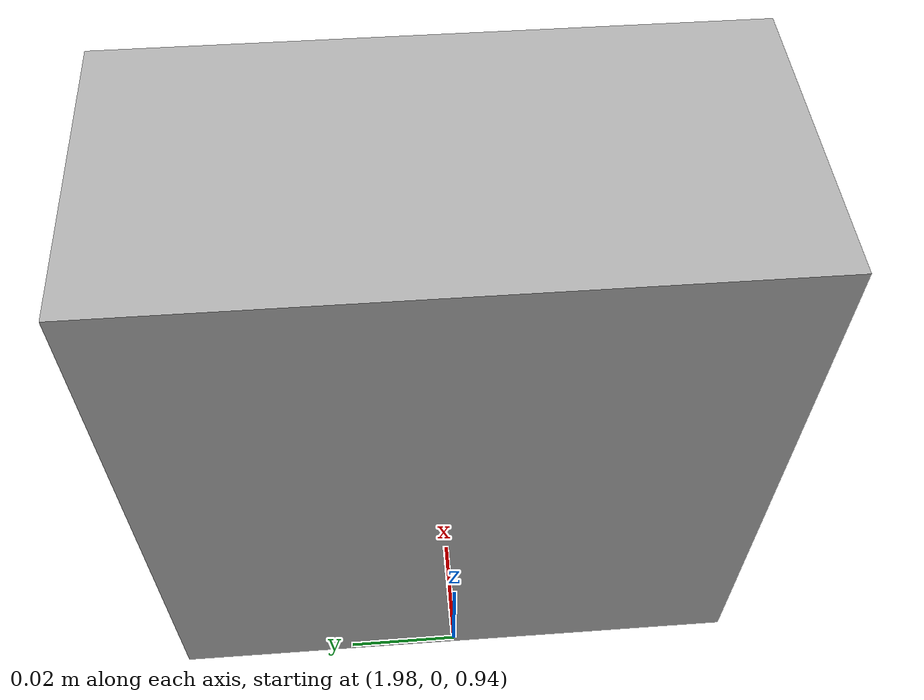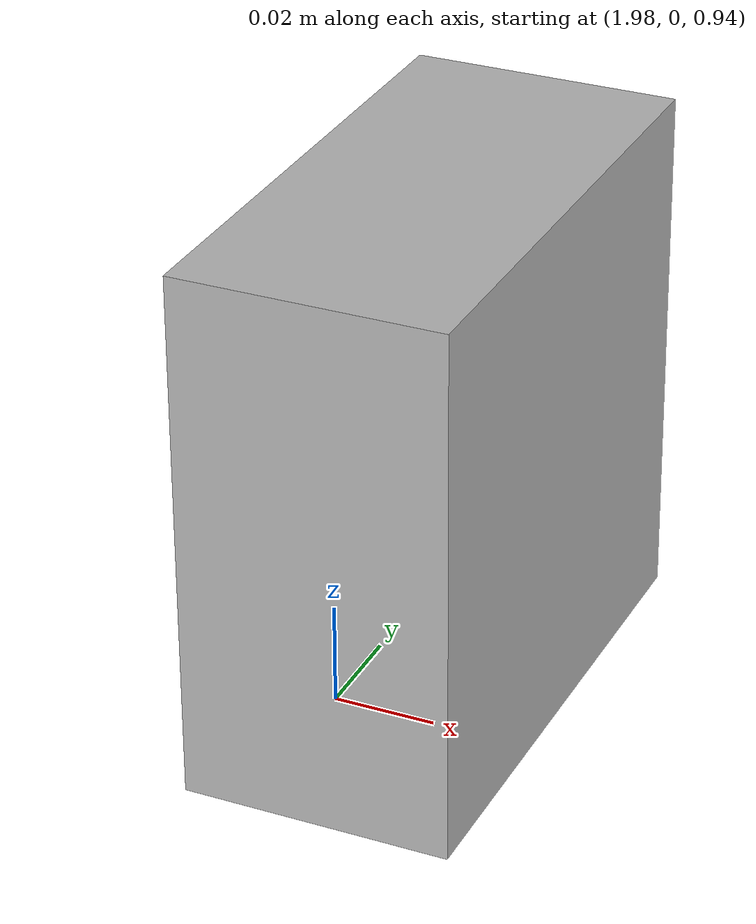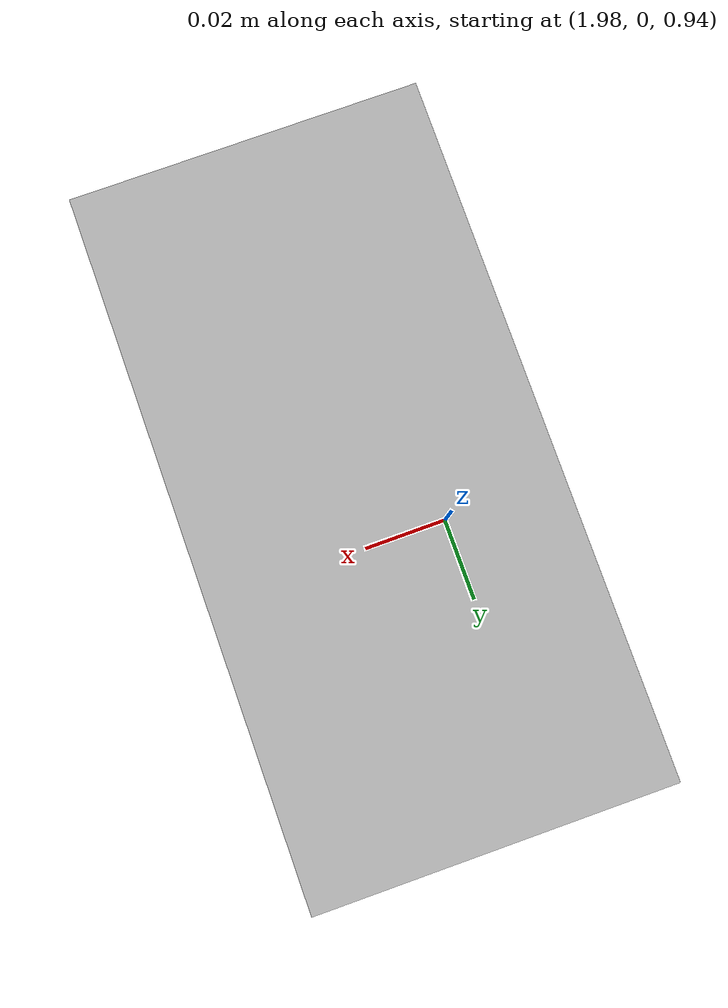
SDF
<?xml version="1.0" ?>
<sdf version="1.6">
  <world name="scene_base">
    <plugin
      filename="ignition-gazebo-physics-system"
      name="ignition::gazebo::systems::Physics">
    </plugin>
    <plugin
      filename="ignition-gazebo-user-commands-system"
      name="ignition::gazebo::systems::UserCommands">
    </plugin>
    <plugin
      filename="ignition-gazebo-scene-broadcaster-system"
      name="ignition::gazebo::systems::SceneBroadcaster">
    </plugin>
    <plugin
      filename="ignition-gazebo-sensors-system"
      name="ignition::gazebo::systems::Sensors">
      <render_engine>ogre2</render_engine>
    </plugin>

    <physics type='ode'>
      <max_step_size>0.001</max_step_size>
      <real_time_factor>1</real_time_factor>
      <real_time_update_rate>0</real_time_update_rate>
      <ode>
        <solver>
            <type>quick</type>
            <iters>50</iters>
        </solver>
        <constraints>
          <contact_max_correcting_vel>1</contact_max_correcting_vel>
        </constraints>
      </ode>
    </physics>

    <scene>
      <ambient>0.4 0.4 0.4 1</ambient>
      <background>0.9 0.9 0.9 1</background>
      <shadows>false</shadows>
    </scene>
    <gui fullscreen="0">

      <!-- 3D scene -->
      <plugin filename="MinimalScene" name="3D View">
        <ignition-gui>
          <title>3D View</title>
          <property type="bool" key="showTitleBar">false</property>
          <property type="string" key="state">docked</property>
        </ignition-gui>

        <engine>ogre2</engine>
        <scene>scene</scene>
        <ambient_light>0.4 0.4 0.4</ambient_light>
        <background_color>0.9 0.9 0.9</background_color>
        <camera_pose>-6 0 6 0 0.5 0</camera_pose>
      </plugin>

      <!-- Plugins that add functionality to the scene -->
      <plugin filename="GzSceneManager" name="Scene Manager">
        <ignition-gui>
          <property key="resizable" type="bool">false</property>
          <property key="width" type="double">5</property>
          <property key="height" type="double">5</property>
          <property key="state" type="string">floating</property>
          <property key="showTitleBar" type="bool">false</property>
        </ignition-gui>
      </plugin>
      <plugin filename="InteractiveViewControl" name="Interactive view control">
        <ignition-gui>
          <property key="resizable" type="bool">false</property>
          <property key="width" type="double">5</property>
          <property key="height" type="double">5</property>
          <property key="state" type="string">floating</property>
          <property key="showTitleBar" type="bool">false</property>
        </ignition-gui>
      </plugin>
      <plugin filename="CameraTracking" name="Camera Tracking">
        <ignition-gui>
          <property key="resizable" type="bool">false</property>
          <property key="width" type="double">5</property>
          <property key="height" type="double">5</property>
          <property key="state" type="string">floating</property>
          <property key="showTitleBar" type="bool">false</property>
        </ignition-gui>
      </plugin>

      <!-- World control -->
      <plugin filename="WorldControl" name="World control">
        <ignition-gui>
          <title>World control</title>
          <property type="bool" key="showTitleBar">false</property>
          <property type="bool" key="resizable">false</property>
          <property type="double" key="height">72</property>
          <property type="double" key="width">121</property>
          <property type="double" key="z">1</property>

          <property type="string" key="state">floating</property>
          <anchors target="3D View">
            <line own="left" target="left"/>
            <line own="bottom" target="bottom"/>
          </anchors>
        </ignition-gui>

        <play_pause>true</play_pause>
        <step>true</step>
        <start_paused>false</start_paused>
        <use_event>true</use_event>

      </plugin>

      <!-- World statistics -->
      <plugin filename="WorldStats" name="World stats">
        <ignition-gui>
          <title>World stats</title>
          <property type="bool" key="showTitleBar">false</property>
          <property type="bool" key="resizable">false</property>
          <property type="double" key="height">110</property>
          <property type="double" key="width">290</property>
          <property type="double" key="z">1</property>

          <property type="string" key="state">floating</property>
          <anchors target="3D View">
            <line own="right" target="right"/>
            <line own="bottom" target="bottom"/>
          </anchors>
        </ignition-gui>

        <sim_time>true</sim_time>
        <real_time>true</real_time>
        <real_time_factor>true</real_time_factor>
        <iterations>true</iterations>
      </plugin>

      <!-- Inspector -->
      <plugin filename="ComponentInspector" name="Component inspector">
        <ignition-gui>
          <property type="string" key="state">docked_collapsed</property>
        </ignition-gui>
      </plugin>

      <!-- Entity tree -->

      <!-- Image Display Plugins for visualization -->
      <plugin filename="ImageDisplay" name="Image Display">
        <ignition-gui>
        </ignition-gui>
        <topic>semantic/colored_map</topic>
      </plugin>
      <plugin filename="ImageDisplay" name="Image Display">
        <ignition-gui>
        </ignition-gui>
        <topic>rgbd/image</topic>
      </plugin>
      <plugin filename="ImageDisplay" name="Image Display">
        <ignition-gui>
        </ignition-gui>
        <topic>rgbd/depth_image</topic>
      </plugin>
    </gui>

    <light type="directional" name="sun">
      <cast_shadows>false</cast_shadows>
      <pose>0 0 20 0 0 0</pose>
      <diffuse>0.9 0.9 0.9 1</diffuse>
      <specular>0.1 0.1 0.1 1</specular>
      <attenuation>
        <range>1000</range>
        <constant>0.9</constant>
        <linear>0.01</linear>
        <quadratic>0.001</quadratic>
      </attenuation>
      <direction>0 0 -1</direction>
    </light>

    <!-- Camera instance -->
    <model name="camera">
      <static>true</static>
      <pose>2 0 1.0 0 0.0 3.14</pose>
      <link name="link">
        <pose>0 0 0 0 0 0</pose>
        <inertial>
          <mass>1.0</mass>
          <inertia>
            <ixx>1.000</ixx>
            <iyy>1.000</iyy>
            <izz>1.000</izz>
          </inertia>
        </inertial>
        <collision name="collision">
          <geometry>
            <box>
              <size>0.05 0.1 0.1</size>
            </box>
          </geometry>
        </collision>
        <visual name="visual">
          <geometry>
            <box>
              <size>0.05 0.1 0.1</size>
            </box>
          </geometry>
        </visual>

        <sensor name="rgbd_camera" type="rgbd_camera">
          <topic>rgbd</topic>
          <camera>
            <horizontal_fov>1.57</horizontal_fov>
            <vertical_fov>1.57</vertical_fov>
            <image>
              <width>400</width>
              <height>400</height>
            </image>
            <clip>
              <near>0.1</near>
              <far>20</far>
            </clip>
            <lens>
              <intrinsics>
                <fx>200.1593288062978</fx>
                <fy>200.1593288062978</fy>
                <cx>200.0</cx>
                <cy>200.0</cy>
                <s>0</s>
              </intrinsics>
            </lens>
          </camera>
          <always_on>1</always_on>
          <update_rate>20</update_rate>
          <visualize>true</visualize>
        </sensor>

        <sensor name="semantic_segmentation_camera" type="segmentation">
          <topic>semantic</topic>
          <camera>
            <segmentation_type>semantic</segmentation_type>
            <horizontal_fov>1.57</horizontal_fov>
            <vertical_fov>1.57</vertical_fov>
            <image>
              <width>400</width>
              <height>400</height>
            </image>
            <clip>
              <near>0.1</near>
              <far>20</far>
            </clip>
          </camera>
          <always_on>1</always_on>
          <update_rate>20</update_rate>
          <visualize>true</visualize>
        </sensor>
      </link>
    </model>

    <!-- Basic models of the scene -->
    <model name="ground_plane">
      <static>true</static>
      <link name="link">
        <collision name="collision">
          <geometry>
            <plane>
              <normal>0 0 1</normal>
              <size>100 100</size>
            </plane>
          </geometry>
        </collision>
      </link>
    </model>

    <gravity>0.0 0.0 -15.0</gravity>
  </world>
</sdf>
